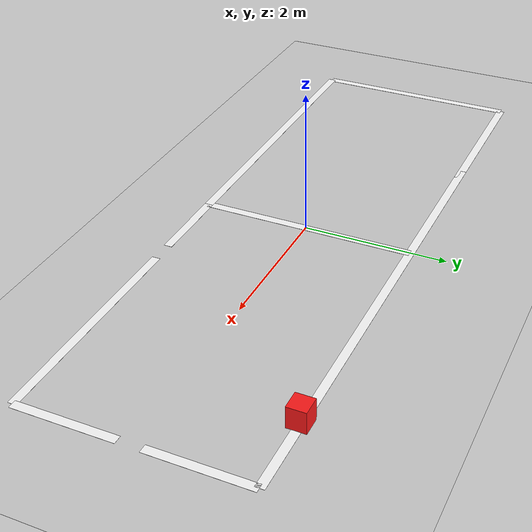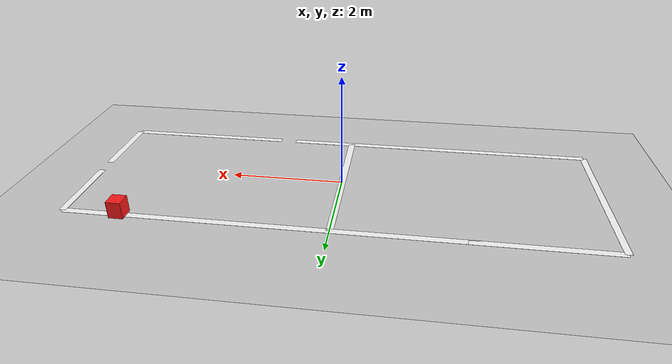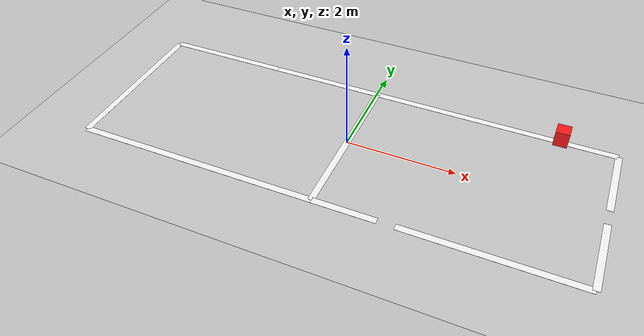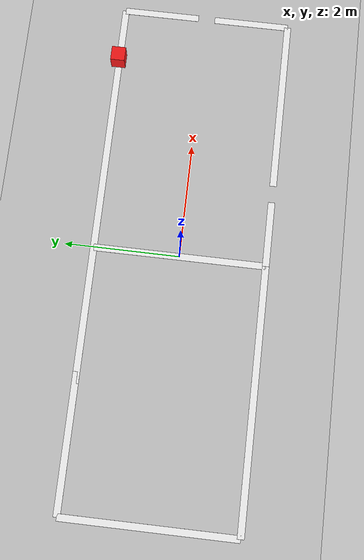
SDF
<?xml version="1.0"?>
<sdf version="1.6">
  <world name="figure8_world">
    <include><uri>model://sun</uri></include>
    <include><uri>model://ground_plane</uri></include>
    <physics name="default" type="ode">
      <max_step_size>0.001</max_step_size>
      <real_time_factor>1</real_time_factor>
    </physics>

    <!-- LOOP A top — GAP 1 is 0.3m wide: x=-2.15 to x=-1.85 -->
    <model name="top_a1"><static>true</static>
      <pose>-3.325 1.5 0.001 0 0 0</pose><link name="link">
        <visual name="v"><geometry><box><size>2.35 0.12 0.001</size></box></geometry>
          <material><ambient>1 1 1 1</ambient><diffuse>1 1 1 1</diffuse></material></visual>
        <collision name="c"><geometry><box><size>2.35 0.12 0.001</size></box></geometry></collision>
      </link></model>

    <model name="top_a2"><static>true</static>
      <pose>-1.175 1.5 0.001 0 0 0</pose><link name="link">
        <visual name="v"><geometry><box><size>2.35 0.12 0.001</size></box></geometry>
          <material><ambient>1 1 1 1</ambient><diffuse>1 1 1 1</diffuse></material></visual>
        <collision name="c"><geometry><box><size>2.35 0.12 0.001</size></box></geometry></collision>
      </link></model>

    <!-- LOOP A left edge -->
    <model name="left_a"><static>true</static>
      <pose>-4.5 0.0 0.001 0 0 1.5708</pose><link name="link">
        <visual name="v"><geometry><box><size>3.0 0.12 0.001</size></box></geometry>
          <material><ambient>1 1 1 1</ambient><diffuse>1 1 1 1</diffuse></material></visual>
        <collision name="c"><geometry><box><size>3.0 0.12 0.001</size></box></geometry></collision>
      </link></model>

    <!-- LOOP A bottom -->
    <model name="bot_a"><static>true</static>
      <pose>-2.25 -1.5 0.001 0 0 0</pose><link name="link">
        <visual name="v"><geometry><box><size>4.5 0.12 0.001</size></box></geometry>
          <material><ambient>1 1 1 1</ambient><diffuse>1 1 1 1</diffuse></material></visual>
        <collision name="c"><geometry><box><size>4.5 0.12 0.001</size></box></geometry></collision>
      </link></model>

    <!-- Shared crossing vertical -->
    <model name="crossing"><static>true</static>
      <pose>0.0 0.0 0.001 0 0 1.5708</pose><link name="link">
        <visual name="v"><geometry><box><size>3.0 0.12 0.001</size></box></geometry>
          <material><ambient>1 1 1 1</ambient><diffuse>1 1 1 1</diffuse></material></visual>
        <collision name="c"><geometry><box><size>3.0 0.12 0.001</size></box></geometry></collision>
      </link></model>

    <!-- LOOP B top -->
    <model name="top_b"><static>true</static>
      <pose>2.25 1.5 0.001 0 0 0</pose><link name="link">
        <visual name="v"><geometry><box><size>4.5 0.12 0.001</size></box></geometry>
          <material><ambient>1 1 1 1</ambient><diffuse>1 1 1 1</diffuse></material></visual>
        <collision name="c"><geometry><box><size>4.5 0.12 0.001</size></box></geometry></collision>
      </link></model>

    <!-- LOOP B right — GAP 3 is 0.3m wide: y=0.15 to y=-0.15 -->
    <model name="right_b1"><static>true</static>
      <pose>4.5 0.825 0.001 0 0 1.5708</pose><link name="link">
        <visual name="v"><geometry><box><size>1.35 0.12 0.001</size></box></geometry>
          <material><ambient>1 1 1 1</ambient><diffuse>1 1 1 1</diffuse></material></visual>
        <collision name="c"><geometry><box><size>1.35 0.12 0.001</size></box></geometry></collision>
      </link></model>

    <model name="right_b2"><static>true</static>
      <pose>4.5 -0.825 0.001 0 0 1.5708</pose><link name="link">
        <visual name="v"><geometry><box><size>1.35 0.12 0.001</size></box></geometry>
          <material><ambient>1 1 1 1</ambient><diffuse>1 1 1 1</diffuse></material></visual>
        <collision name="c"><geometry><box><size>1.35 0.12 0.001</size></box></geometry></collision>
      </link></model>

    <!-- LOOP B bottom — GAP 2 is 0.3m wide: x=1.15 to x=1.45 -->
    <model name="bot_b1"><static>true</static>
      <pose>2.975 -1.5 0.001 0 0 0</pose><link name="link">
        <visual name="v"><geometry><box><size>3.05 0.12 0.001</size></box></geometry>
          <material><ambient>1 1 1 1</ambient><diffuse>1 1 1 1</diffuse></material></visual>
        <collision name="c"><geometry><box><size>3.05 0.12 0.001</size></box></geometry></collision>
      </link></model>

    <model name="bot_b2"><static>true</static>
      <pose>0.575 -1.5 0.001 0 0 0</pose><link name="link">
        <visual name="v"><geometry><box><size>1.15 0.12 0.001</size></box></geometry>
          <material><ambient>1 1 1 1</ambient><diffuse>1 1 1 1</diffuse></material></visual>
        <collision name="c"><geometry><box><size>1.15 0.12 0.001</size></box></geometry></collision>
      </link></model>

    <!-- OBSTACLE on top_b -->
    <model name="obstacle"><static>true</static>
      <pose>3.5 1.5 0.15 0 0 0</pose><link name="link">
        <visual name="v">
          <geometry><box><size>0.25 0.25 0.3</size></box></geometry>
          <material><ambient>1 0.1 0.1 1</ambient><diffuse>1 0.1 0.1 1</diffuse></material>
        </visual>
        <collision name="c"><geometry><box><size>0.25 0.25 0.3</size></box></geometry></collision>
      </link></model>

  </world>
</sdf>
